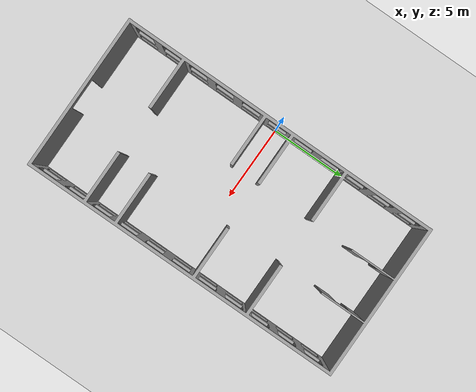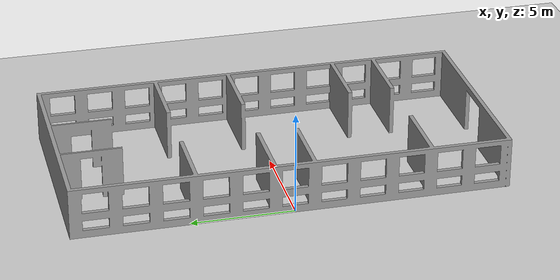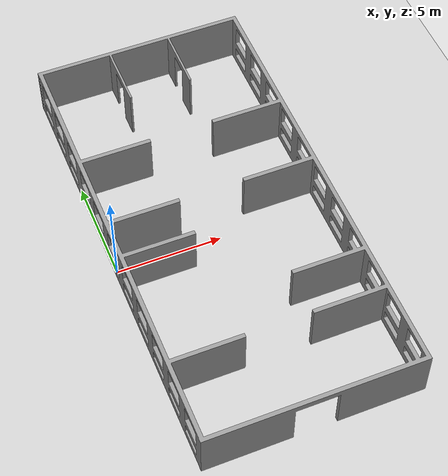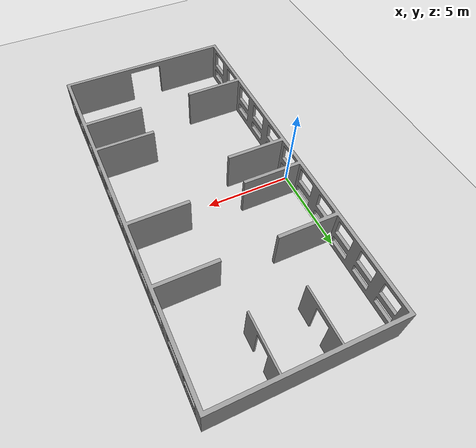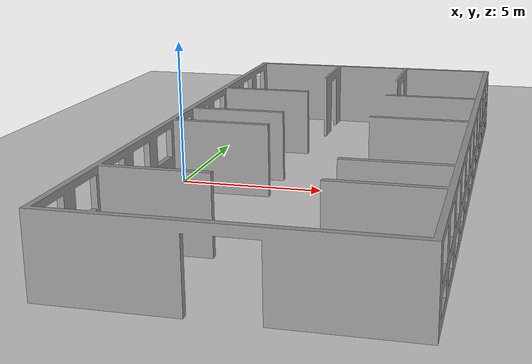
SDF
<sdf version="1.6">
 <world name="default">
  <light name="sun" type="directional">
   <pose>0 0 10 0 -0 0</pose>
   <diffuse>0.8 0.8 0.8 1</diffuse>
   <specular>0.1 0.1 0.1 1</specular>
   <attenuation>
    <range>1000</range>
    <constant>0.9</constant>
    <linear>0.01</linear>
    <quadratic>0.001</quadratic>
   </attenuation>
   <direction>-0.5 0.5 -1</direction>
  </light>
  <model name="ground_plane">
   <static>1</static>
   <link name="link">
    <collision name="collision">
     <geometry><plane><normal>0 0 1</normal><size>100 100</size></plane></geometry>
     <surface><friction><ode><mu>100</mu><mu2>50</mu2></ode></friction></surface>
    </collision>
    <visual name="visual">
     <cast_shadows>0</cast_shadows>
     <geometry><plane><normal>0 0 1</normal><size>100 100</size></plane></geometry>
     <material>
      <script><uri>file://media/materials/scripts/gazebo.material</uri><name>Gazebo/Grey</name></script>
     </material>
    </visual>
    <velocity_decay><linear>0</linear><angular>0</angular></velocity_decay>
   </link>
  </model>
  <model name="floor_plan_simple">
   <static>1</static>
   <link name="link">
    <collision name="collision">
     <geometry>
      <mesh><scale>1 1 1</scale><uri>model://larics_gazebo_worlds/models/floor_plan_simple/model.dae</uri></mesh>
     </geometry>
     <surface><friction><ode><mu>100</mu><mu2>50</mu2></ode></friction></surface>
    </collision>
    <visual name="visual">
     <cast_shadows>0</cast_shadows>
     <geometry>
      <mesh><scale>1 1 1</scale><uri>model://larics_gazebo_worlds/models/floor_plan_simple/model.dae</uri></mesh>
     </geometry>
     <material>
      <script><uri>file://media/materials/scripts/gazebo.material</uri><name>Gazebo/Grey</name></script>
     </material>
    </visual>
   </link>
  </model>
  <plugin name="ros_contain_gazebo_plugin" filename="libros_contain_gazebo_plugin.so">
   <enabled>true</enabled>
   <entity>UAV1::base_link UAV2::base_link UAV3::base_link UGV1::base_link UGV2::base_link</entity>
   <namespace>room1</namespace>
   <pose>1.5 -9 1 0 0 0</pose>
   <robot_namespace>room1</robot_namespace>
   <contain_topic>container</contain_topic>
   <geometry><box><size>1.5 1.5 2</size></box></geometry>
   <rate>1</rate>
  </plugin>
  <plugin name="ros_contain_gazebo_plugin" filename="libros_contain_gazebo_plugin.so">
   <enabled>true</enabled>
   <entity>UAV1::base_link UAV2::base_link UAV3::base_link UGV1::base_link UGV2::base_link</entity>
   <namespace>room2</namespace>
   <pose>1.5 -3.5 1 0 0 0</pose>
   <robot_namespace>room2</robot_namespace>
   <contain_topic>container</contain_topic>
   <geometry><box><size>1.5 1.5 2</size></box></geometry>
   <rate>1</rate>
  </plugin>
  <plugin name="ros_contain_gazebo_plugin" filename="libros_contain_gazebo_plugin.so">
   <enabled>true</enabled>
   <entity>UAV1::base_link UAV2::base_link UAV3::base_link UGV1::base_link UGV2::base_link</entity>
   <namespace>room3</namespace>
   <pose>1.5 0 1 0 0 0</pose>
   <robot_namespace>room3</robot_namespace>
   <contain_topic>container</contain_topic>
   <geometry><box><size>1.5 1.5 2</size></box></geometry>
  </plugin>
  <plugin name="ros_contain_gazebo_plugin" filename="libros_contain_gazebo_plugin.so">
   <enabled>true</enabled>
   <entity>UAV1::base_link UAV2::base_link UAV3::base_link UGV1::base_link UGV2::base_link</entity>
   <namespace>room4</namespace>
   <pose>1.5 3 1 0 0 0</pose>
   <robot_namespace>room4</robot_namespace>
   <contain_topic>container</contain_topic>
   <geometry><box><size>1.5 1.5 2</size></box></geometry>
  </plugin>
  <plugin name="ros_contain_gazebo_plugin" filename="libros_contain_gazebo_plugin.so">
   <enabled>true</enabled>
   <entity>UAV1::base_link UAV2::base_link UAV3::base_link UGV1::base_link UGV2::base_link</entity>
   <namespace>room5</namespace>
   <pose>1.5 8 1 0 0 0</pose>
   <robot_namespace>room5</robot_namespace>
   <contain_topic>container</contain_topic>
   <geometry><box><size>1.5 1.5 2</size></box></geometry>
  </plugin>
  <plugin name="ros_contain_gazebo_plugin" filename="libros_contain_gazebo_plugin.so">
   <enabled>true</enabled>
   <entity>UAV1::base_link UAV2::base_link UAV3::base_link UGV1::base_link UGV2::base_link</entity>
   <namespace>room6</namespace>
   <pose>8 8 1 0 0 0</pose>
   <robot_namespace>room6</robot_namespace>
   <contain_topic>container</contain_topic>
   <geometry><box><size>1.5 1.5 2</size></box></geometry>
  </plugin>
  <plugin name="ros_contain_gazebo_plugin" filename="libros_contain_gazebo_plugin.so">
   <enabled>true</enabled>
   <entity>UAV1::base_link UAV2::base_link UAV3::base_link UGV1::base_link UGV2::base_link</entity>
   <namespace>room7</namespace>
   <pose>8 3 1 0 0 0</pose>
   <robot_namespace>room7</robot_namespace>
   <contain_topic>container</contain_topic>
   <geometry><box><size>1.5 1.5 2</size></box></geometry>
  </plugin>
  <plugin name="ros_contain_gazebo_plugin" filename="libros_contain_gazebo_plugin.so">
   <enabled>true</enabled>
   <entity>UAV1::base_link UAV2::base_link UAV3::base_link UGV1::base_link UGV2::base_link</entity>
   <namespace>room8</namespace>
   <pose>8 2 1 0 0 0</pose>
   <robot_namespace>room8</robot_namespace>
   <contain_topic>container</contain_topic>
   <geometry><box><size>1.5 1.5 2</size></box></geometry>
  </plugin>
  <plugin name="ros_contain_gazebo_plugin" filename="libros_contain_gazebo_plugin.so">
   <enabled>true</enabled>
   <entity>UAV1::base_link UAV2::base_link UAV3::base_link UGV1::base_link UGV2::base_link</entity>
   <namespace>room9</namespace>
   <pose>8 -5.75 1 0 0 0</pose>
   <robot_namespace>room9</robot_namespace>
   <contain_topic>container</contain_topic>
   <geometry><box><size>1.5 1.5 2</size></box></geometry>
  </plugin>
  <plugin name="ros_contain_gazebo_plugin" filename="libros_contain_gazebo_plugin.so">
   <enabled>true</enabled>
   <entity>UAV1::base_link UAV2::base_link UAV3::base_link UGV1::base_link UGV2::base_link</entity>
   <namespace>room10</namespace>
   <pose>8 -9 1 0 0 0</pose>
   <robot_namespace>room10</robot_namespace>
   <contain_topic>container</contain_topic>
   <geometry><box><size>1.5 1.5 2</size></box></geometry>
  </plugin>
  <gravity>0 0 -9.8</gravity>
  <magnetic_field>6e-06 2.3e-05 -4.2e-05</magnetic_field>
  <atmosphere type="adiabatic"/>
  <physics name="default_physics" default="0" type="ode">
   <max_step_size>0.001</max_step_size>
   <real_time_factor>1</real_time_factor>
   <real_time_update_rate>1000</real_time_update_rate>
  </physics>
  <scene><ambient>0.4 0.4 0.4 1</ambient><background>0.7 0.7 0.7 1</background><shadows>1</shadows></scene>
  <spherical_coordinates>
   <surface_model>EARTH_WGS84</surface_model>
   <latitude_deg>0</latitude_deg>
   <longitude_deg>0</longitude_deg>
   <elevation>0</elevation>
   <heading_deg>0</heading_deg>
  </spherical_coordinates>
 </world>
</sdf>
